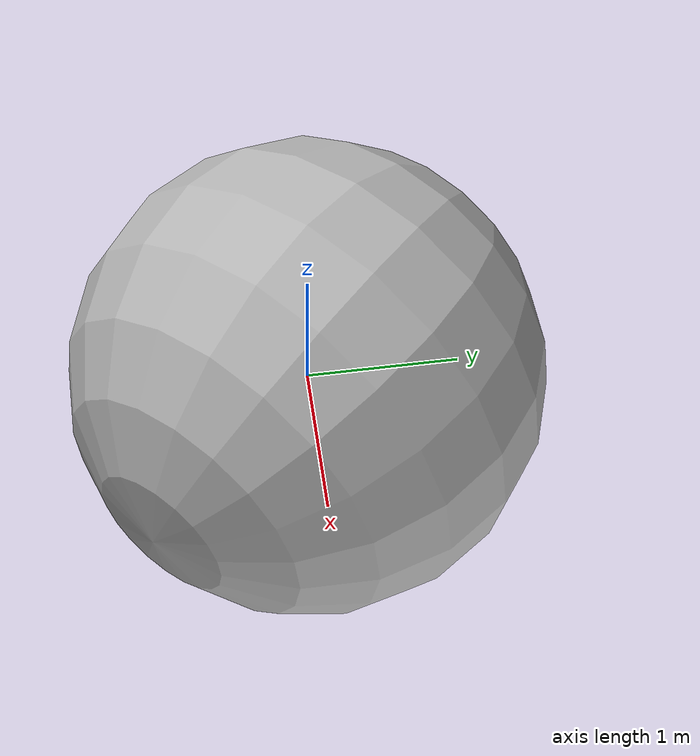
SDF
<?xml version="1.0" ?>
<sdf version="1.7">
  <model name="test_model_with_frames">
    <frame name="F1">
      <pose>0 0 0 1.570796 0 0</pose>
    </frame>
    <frame name="F2">
      <pose relative_to="F1">0 0 0 0 0.785398 0</pose>
    </frame>
    <link name="L1">
      <pose relative_to="F1"/>
      <visual name="V1">
        <pose relative_to="F2"/>
        <geometry>
          <sphere>
            <radius>1.5707963267948966</radius>
          </sphere>
        </geometry>
      </visual>
      <collision name="C1">
        <pose relative_to="__model__"/>
        <geometry>
          <sphere>
            <radius>0.78539816339744828</radius>
          </sphere>
        </geometry>
      </collision>
    </link>
    <link name="L2">
      <pose relative_to="F1">1 0 0 0 0 0</pose>
    </link>
    <link name="L3">
      <pose relative_to="L2">0 1 0 0 0 0</pose>
    </link>
    <link name="L4">
      <pose relative_to="__model__">0 0 1 0 0 0</pose>
    </link>
    <joint name="J1" type="universal">
      <pose relative_to="L1"/>
      <parent>L1</parent>
      <child>L2</child>
      <axis>
        <xyz expressed_in="F2">0 0 1</xyz>
      </axis>
      <axis2>
        <xyz expressed_in="F2">1 0 0</xyz>
      </axis2>
    </joint>
    <joint name="J2" type="revolute">
      <pose relative_to="">0 0 1 0 0 0</pose>
      <parent>L2</parent>
      <child>L3</child>
      <axis>
        <xyz expressed_in="__model__">0 0 1</xyz>
      </axis>
    </joint>
    <joint name="J3" type="fixed">
      <pose relative_to="__model__">1 0 1 0 0 0</pose>
      <parent>L3</parent>
      <child>L4</child>
    </joint>
    <model name="M2">
      <pose relative_to="F1">1 0 0 0 0 0</pose>
      <link name="L5">
        <pose>1 0 0 0 0 0</pose>
      </link>
    </model>
  </model>
</sdf>
